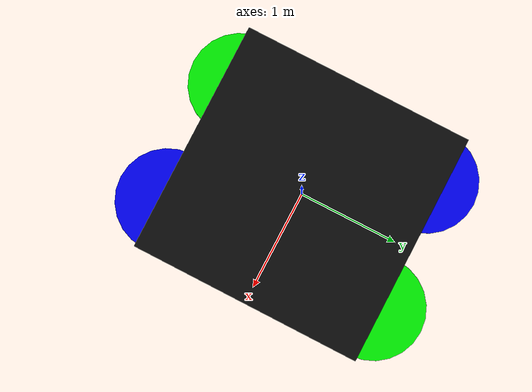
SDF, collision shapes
<?xml version='1.0'?>
<sdf version='1.9'>
  <model name='our_iris'>
    <pose>0 0 0 0 0 0</pose>
    <link name='base_link'>
      <velocity_decay>
        <linear>0.0</linear>
        <angular>0.0</angular>
      </velocity_decay>
      <inertial>
        <pose>0 0 0 0 0 0</pose>
        <!-- mass ×125 -->
        <mass>187.5</mass>
        <inertia>
          <!-- inertia ×3125 -->
          <ixx>25.0</ixx>
          <ixy>0</ixy>
          <ixz>0</ixz>
          <iyy>46.875</iyy>
          <iyz>0</iyz>
          <izz>53.125</izz>
        </inertia>
      </inertial>
      <collision name='base_collision'>
        <!-- pose Z ×5 -->
        <pose>0 0 -0.4 0 0 0</pose>
        <geometry>
          <box>
            <!-- size ×5 -->
            <size>2.35 2.35 1.15</size>
          </box>
        </geometry>
        <surface>
          <contact>
            <ode>
              <max_vel>100.0</max_vel>
              <min_depth>0.001</min_depth>
            </ode>
          </contact>
          <friction>
            <ode>
              <mu>100000.0</mu>
              <mu2>100000.0</mu2>
            </ode>
          </friction>
        </surface>
      </collision>
<visual name='base_visual'>
  <geometry>
    <mesh>
      <!-- add this line: -->
      <scale>5 5 5</scale>
      <uri>model://iris_with_standoffs/meshes/iris.dae</uri>
    </mesh>
  </geometry>
  <material>
    <ambient>0.05 0.05 0.05</ambient>
    <diffuse>0.05 0.05 0.05</diffuse>
    <specular>1 1 1 1</specular>
    <pbr>
      <metal>
        <metalness>0.5</metalness>
        <roughness>0.5</roughness>
      </metal>
    </pbr>
  </material>
</visual>

      <!-- legs visuals: pose ×5, cylinder radius ×5, length ×5 -->
      <visual name='front_left_leg_visual'>
        <pose>0.615 1.1 -0.55 0 0 0</pose>
        <geometry>
          <cylinder>
            <radius>0.025</radius>
            <length>0.85</length>
          </cylinder>
        </geometry>
        <material>
          <ambient>0.05 0.05 0.05</ambient>
          <diffuse>0.05 0.05 0.05</diffuse>
          <specular>0.01 0.01 0.01 1.0</specular>
          <pbr>
            <metal>
              <metalness>0.5</metalness>
              <roughness>0.5</roughness>
            </metal>
          </pbr>
        </material>
      </visual>
      <visual name='front_right_leg_visual'>
        <pose>0.615 -1.1 -0.55 0 0 0</pose>
        <geometry>
          <cylinder>
            <radius>0.025</radius>
            <length>0.85</length>
          </cylinder>
        </geometry>
        <material>
          <ambient>0.05 0.05 0.05</ambient>
          <diffuse>0.05 0.05 0.05</diffuse>
          <specular>0.01 0.01 0.01 1.0</specular>
          <pbr>
            <metal>
              <metalness>0.5</metalness>
              <roughness>0.5</roughness>
            </metal>
          </pbr>
        </material>
      </visual>
      <visual name='rear_left_leg_visual'>
        <pose>-0.7 1.05 -0.55 0 0 0</pose>
        <geometry>
          <cylinder>
            <radius>0.025</radius>
            <length>0.85</length>
          </cylinder>
        </geometry>
        <material>
          <ambient>0.05 0.05 0.05</ambient>
          <diffuse>0.05 0.05 0.05</diffuse>
          <specular>0.01 0.01 0.01 1.0</specular>
          <pbr>
            <metal>
              <metalness>0.5</metalness>
              <roughness>0.5</roughness>
            </metal>
          </pbr>
        </material>
      </visual>
      <visual name='rear_right_leg_visual'>
        <pose>-0.7 -1.05 -0.55 0 0 0</pose>
        <geometry>
          <cylinder>
            <radius>0.025</radius>
            <length>0.85</length>
          </cylinder>
        </geometry>
        <material>
          <ambient>0.05 0.05 0.05</ambient>
          <diffuse>0.05 0.05 0.05</diffuse>
          <specular>0.01 0.01 0.01 1.0</specular>
          <pbr>
            <metal>
              <metalness>0.5</metalness>
              <roughness>0.5</roughness>
            </metal>
          </pbr>
        </material>
      </visual>
    </link>

    <link name='imu_link'>
      <inertial>
        <pose>0 0 0 0 0 0</pose>
        <!-- mass ×125 -->
        <mass>18.75</mass>
        <inertia>
          <ixx>0.03125</ixx>
          <ixy>0</ixy>
          <ixz>0</ixz>
          <iyy>0.0625</iyy>
          <iyz>0</iyz>
          <izz>0.0625</izz>
        </inertia>
      </inertial>
      <sensor name="imu_sensor" type="imu">
        <pose degrees="true">0 0 0 180 0 0</pose>
        <always_on>1</always_on>
        <update_rate>1000.0</update_rate>
      </sensor>
    </link>

    <joint name='imu_joint' type='revolute'>
      <child>imu_link</child>
      <parent>base_link</parent>
      <axis>
        <xyz>0 0 1</xyz>
        <limit>
          <lower>0</lower>
          <upper>0</upper>
          <effort>0</effort>
          <velocity>0</velocity>
        </limit>
        <dynamics>
          <damping>1.0</damping>
        </dynamics>
      </axis>
    </joint>

    <!-- rotor links: pose ×5, mass ×125, inertia ×3125, collision geometry ×5, mesh scale 5 -->
    <link name='rotor_0'>
      <pose>0.65 -1.1 0.115 0 0 0</pose>
      <inertial>
        <pose>0 0 0 0 0 0</pose>
        <mass>3.125</mass>
        <inertia>
          <ixx>0.03046875</ixx>
          <ixy>0</ixy>
          <ixz>0</ixz>
          <iyy>0.52095</iyy>
          <iyz>0</iyz>
          <izz>0.5237625</izz>
        </inertia>
      </inertial>
      <collision name='rotor_0_collision'>
        <pose>0 0 0 0 0 0</pose>
        <geometry>
          <cylinder>
            <length>0.025</length>
            <radius>0.5</radius>
          </cylinder>
        </geometry>
        <surface>
          <contact><ode/></contact>
          <friction><ode/></friction>
        </surface>
      </collision>
      <visual name='rotor_0_visual'>
        <pose>0 0 0 0 0 0</pose>
        <geometry>
          <mesh>
            <!-- scale ×5 -->
            <scale>5 5 5</scale>
            <uri>model://iris_with_standoffs/meshes/iris_prop_ccw.dae</uri>
          </mesh>
        </geometry>
        <material>
          <ambient>0 0 1</ambient>
          <diffuse>0 0 1</diffuse>
          <specular>1 1 1 1</specular>
          <pbr>
            <metal>
              <metalness>0.5</metalness>
              <roughness>0.5</roughness>
            </metal>
          </pbr>
        </material>
      </visual>
      <gravity>1</gravity>
      <velocity_decay/>
      <self_collide>0</self_collide>
    </link>
    <joint name='rotor_0_joint' type='revolute'>
      <child>rotor_0</child>
      <parent>base_link</parent>
      <axis>
        <xyz>0 0 1</xyz>
        <limit>
          <lower>-1e+16</lower>
          <upper>1e+16</upper>
        </limit>
        <dynamics><damping>0.004</damping></dynamics>
      </axis>
      <physics><ode><implicit_spring_damper>1</implicit_spring_damper></ode></physics>
    </joint>
    <!-- rotor_1, rotor_2, rotor_3 similarly scaled -->
    <link name='rotor_1'>
      <pose>-0.65 1.0 0.115 0 0 0</pose>
      <inertial><pose>0 0 0 0 0 0</pose><mass>3.125</mass>
        <inertia><ixx>0.03046875</ixx><ixy>0</ixy><ixz>0</ixz><iyy>0.52095</iyy><iyz>0</iyz><izz>0.5237625</izz></inertia>
      </inertial>
      <collision name='rotor_1_collision'><pose>0 0 0 0 0 0</pose>
        <geometry><cylinder><length>0.025</length><radius>0.5</radius></cylinder></geometry>
        <surface><contact><ode/></contact><friction><ode/></friction></surface>
      </collision>
      <visual name='rotor_1_visual'><pose>0 0 0 0 0 0</pose>
        <geometry><mesh><scale>5 5 5</scale><uri>model://iris_with_standoffs/meshes/iris_prop_ccw.dae</uri></mesh></geometry>
        <material><ambient>0 0 1 1</ambient><diffuse>0 0 1 1</diffuse><specular>1 1 1 1</specular>
          <pbr><metal><metalness>0.5</metalness><roughness>0.5</roughness></metal></pbr>
        </material>
      </visual>
      <gravity>1</gravity><velocity_decay/><self_collide>0</self_collide>
    </link>
    <joint name='rotor_1_joint' type='revolute'><child>rotor_1</child><parent>base_link</parent>
      <axis><xyz>0 0 1</xyz><limit><lower>-1e+16</lower><upper>1e+16</upper></limit>
        <dynamics><damping>0.004</damping></dynamics></axis>
      <physics><ode><implicit_spring_damper>1</implicit_spring_damper></ode></physics>
    </joint>
    <link name='rotor_2'>
      <pose>0.65 1.1 0.115 0 0 0</pose>
      <inertial><pose>0 0 0 0 0 0</pose><mass>3.125</mass>
        <inertia><ixx>0.03046875</ixx><ixy>0</ixy><ixz>0</ixz><iyy>0.52095</iyy><iyz>0</iyz><izz>0.5237625</izz></inertia>
      </inertial>
      <collision name='rotor_2_collision'><pose>0 0 0 0 0 0</pose>
        <geometry><cylinder><length>0.025</length><radius>0.5</radius></cylinder></geometry>
        <surface><contact><ode/></contact><friction><ode/></friction></surface>
      </collision>
      <visual name='rotor_2_visual'><pose>0 0 0 0 0 0</pose>
        <geometry><mesh><scale>5 5 5</scale><uri>model://iris_with_standoffs/meshes/iris_prop_cw.dae</uri></mesh></geometry>
        <material><ambient>0 1 0</ambient><diffuse>0 1 0</diffuse><specular>1 1 1 1</specular>
          <pbr><metal><metalness>0.5</metalness><roughness>0.5</roughness></metal></pbr>
        </material>
      </visual>
      <gravity>1</gravity><velocity_decay/><self_collide>0</self_collide>
    </link>
    <joint name='rotor_2_joint' type='revolute'><child>rotor_2</child><parent>base_link</parent>
      <axis><xyz>0 0 1</xyz><limit><lower>-1e+16</lower><upper>1e+16</upper></limit>
        <dynamics><damping>.004</damping></dynamics></axis>
      <physics><ode><implicit_spring_damper>1</implicit_spring_damper></ode></physics>
    </joint>
    <link name='rotor_3'>
      <pose>-0.65 -1.0 0.115 0 0 0</pose>
      <inertial><pose>0 0 0 0 0 0</pose><mass>3.125</mass>
        <inertia><ixx>0.03046875</ixx><ixy>0</ixy><ixz>0</ixz><iyy>0.52095</iyy><iyz>0</iyz><izz>0.5237625</izz></inertia>
      </inertial>
      <collision name='rotor_3_collision'><pose>0 0 0 0 0 0</pose>
        <geometry><cylinder><length>0.025</length><radius>0.5</radius></cylinder></geometry>
        <surface><contact><ode/></contact><friction><ode/></friction></surface>
      </collision>
      <visual name='rotor_3_visual'><pose>0 0 0 0 0 0</pose>
        <geometry><mesh><scale>5 5 5</scale><uri>model://iris_with_standoffs/meshes/iris_prop_cw.dae</uri></mesh></geometry>
        <material><ambient>0 1 0</ambient><diffuse>0 1 0</diffuse><specular>1 1 1 1</specular>
          <pbr><metal><metalness>0.5</metalness><roughness>0.5</roughness></metal></pbr>
        </material>
      </visual>
      <gravity>1</gravity><velocity_decay/><self_collide>0</self_collide>
    </link>
    <joint name='rotor_3_joint' type='revolute'><child>rotor_3</child><parent>base_link</parent>
      <axis><xyz>0 0 1</xyz><limit><lower>-1e+16</lower><upper>1e+16</upper></limit>
        <dynamics><damping>0.004</damping></dynamics></axis>
      <physics><ode><implicit_spring_damper>1</implicit_spring_damper></ode></physics>
    </joint>
  </model>
</sdf>
